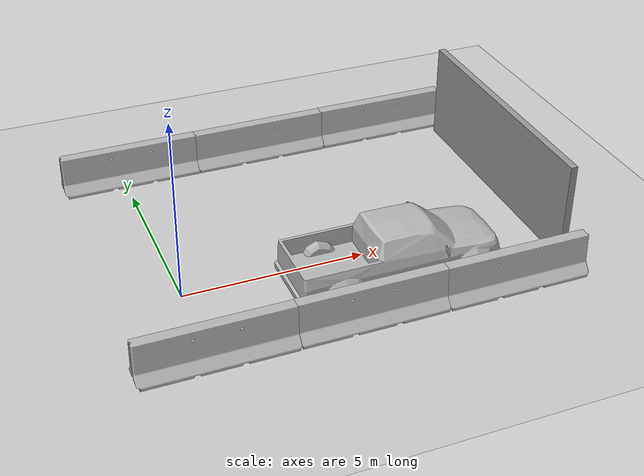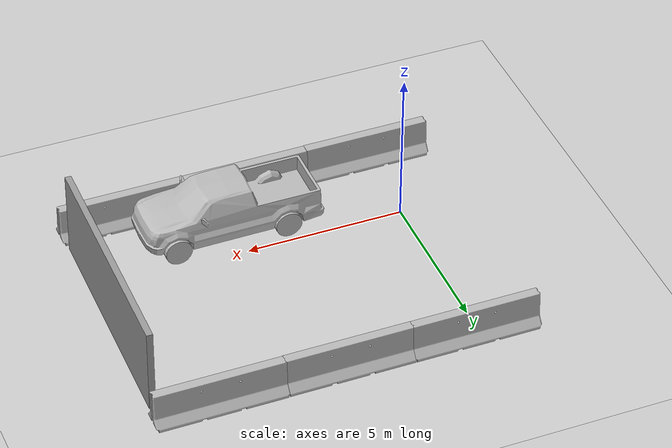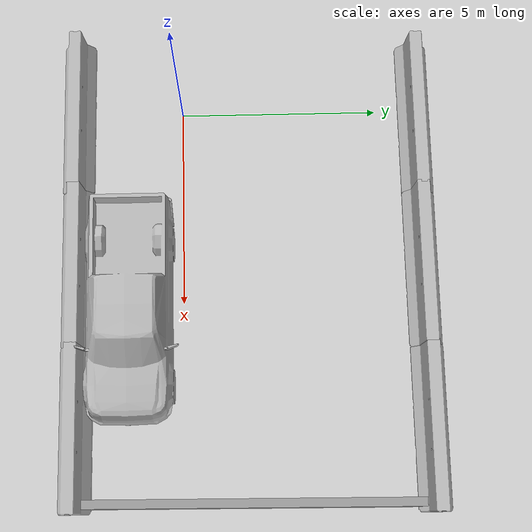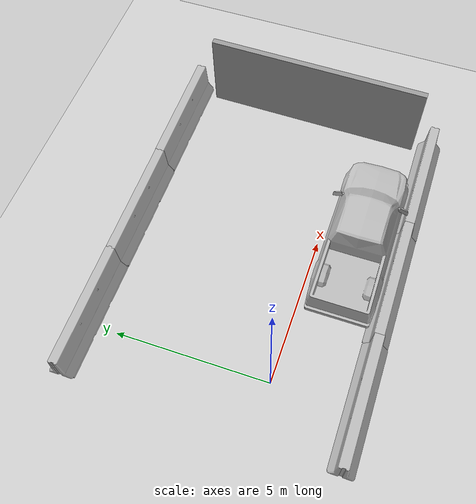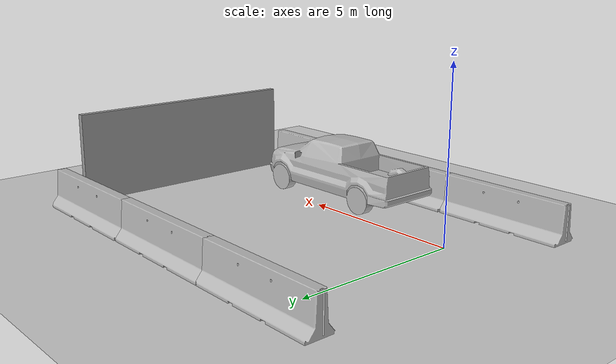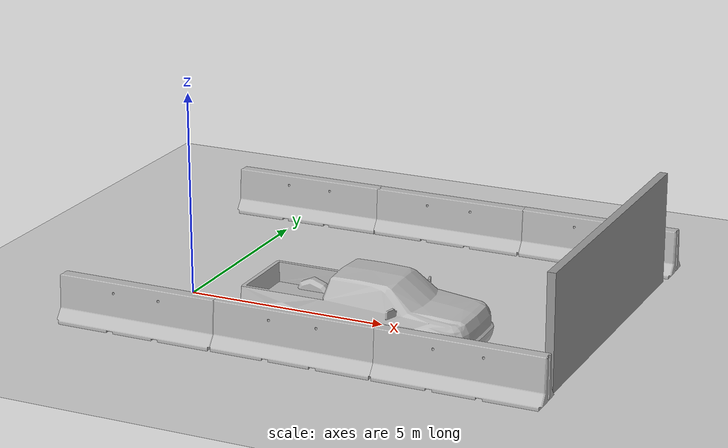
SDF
<sdf version="1.6">
 <world name="default">
  <model name="ground_plane">
   <static>1</static>
   <link name="link">
    <collision name="collision">
     <geometry><plane><normal>0 0 1</normal><size>100 100</size></plane></geometry>
     <surface><friction><ode><mu>100</mu><mu2>50</mu2></ode></friction></surface>
    </collision>
    <visual name="visual">
     <transparency>1</transparency>
     <cast_shadows>0</cast_shadows>
     <geometry><plane><normal>0 0 1</normal><size>100 100</size></plane></geometry>
     <material>
      <script><uri>file://media/materials/scripts/gazebo.material</uri><name>Gazebo/Grey</name></script>
     </material>
    </visual>
   </link>
  </model>
  <model name="jersey_barrier_1">
   <static>1</static>
   <link name="link">
    <visual name="visual">
     <geometry><mesh><uri>model://jersey_barrier/meshes/jersey_barrier.dae</uri></mesh></geometry>
    </visual>
    <collision name="upright">
     <pose>0 0 0.5715 0 -0 0</pose>
     <geometry><box><size>4.06542 0.3063 1.143</size></box></geometry>
    </collision>
    <collision name="base">
     <pose>0 0 0.032258 0 -0 0</pose>
     <geometry><box><size>4.06542 0.8107 0.064516</size></box></geometry>
    </collision>
    <collision name="base2">
     <pose>0 0 0.1 0 -0 0</pose>
     <geometry><box><size>4.06542 0.65 0.1</size></box></geometry>
    </collision>
    <collision name="base3">
     <pose>0 0 0.2 0 -0 0</pose>
     <geometry><box><size>4.06542 0.5 0.1</size></box></geometry>
    </collision>
    <collision name="left-angle">
     <pose>0 -0.224 0.2401 0.9 -0 0</pose>
     <geometry><box><size>4.06542 0.5 0.064516</size></box></geometry>
    </collision>
    <collision name="right-angle">
     <pose>0 0.224 0.2401 -0.9 0 0</pose>
     <geometry><box><size>4.06542 0.5 0.064516</size></box></geometry>
    </collision>
   </link>
   <pose>0.248575 6.01011 0 0 -0 0</pose>
  </model>
  <model name="jersey_barrier_2">
   <static>1</static>
   <link name="link">
    <visual name="visual">
     <geometry><mesh><uri>model://jersey_barrier/meshes/jersey_barrier.dae</uri></mesh></geometry>
    </visual>
    <collision name="upright">
     <pose>0 0 0.5715 0 -0 0</pose>
     <geometry><box><size>4.06542 0.3063 1.143</size></box></geometry>
    </collision>
    <collision name="base">
     <pose>0 0 0.032258 0 -0 0</pose>
     <geometry><box><size>4.06542 0.8107 0.064516</size></box></geometry>
    </collision>
    <collision name="base2">
     <pose>0 0 0.1 0 -0 0</pose>
     <geometry><box><size>4.06542 0.65 0.1</size></box></geometry>
    </collision>
    <collision name="base3">
     <pose>0 0 0.2 0 -0 0</pose>
     <geometry><box><size>4.06542 0.5 0.1</size></box></geometry>
    </collision>
    <collision name="left-angle">
     <pose>0 -0.224 0.2401 0.9 -0 0</pose>
     <geometry><box><size>4.06542 0.5 0.064516</size></box></geometry>
    </collision>
    <collision name="right-angle">
     <pose>0 0.224 0.2401 -0.9 0 0</pose>
     <geometry><box><size>4.06542 0.5 0.064516</size></box></geometry>
    </collision>
   </link>
   <pose>4.20715 6.00684 0 0 -0 0</pose>
  </model>
  <model name="jersey_barrier_3">
   <static>1</static>
   <link name="link">
    <visual name="visual">
     <geometry><mesh><uri>model://jersey_barrier/meshes/jersey_barrier.dae</uri></mesh></geometry>
    </visual>
    <collision name="upright">
     <pose>0 0 0.5715 0 -0 0</pose>
     <geometry><box><size>4.06542 0.3063 1.143</size></box></geometry>
    </collision>
    <collision name="base">
     <pose>0 0 0.032258 0 -0 0</pose>
     <geometry><box><size>4.06542 0.8107 0.064516</size></box></geometry>
    </collision>
    <collision name="base2">
     <pose>0 0 0.1 0 -0 0</pose>
     <geometry><box><size>4.06542 0.65 0.1</size></box></geometry>
    </collision>
    <collision name="base3">
     <pose>0 0 0.2 0 -0 0</pose>
     <geometry><box><size>4.06542 0.5 0.1</size></box></geometry>
    </collision>
    <collision name="left-angle">
     <pose>0 -0.224 0.2401 0.9 -0 0</pose>
     <geometry><box><size>4.06542 0.5 0.064516</size></box></geometry>
    </collision>
    <collision name="right-angle">
     <pose>0 0.224 0.2401 -0.9 0 0</pose>
     <geometry><box><size>4.06542 0.5 0.064516</size></box></geometry>
    </collision>
   </link>
   <pose>8.19136 6.01867 0 0 -0 0</pose>
  </model>
  <model name="jersey_barrier_4">
   <static>1</static>
   <link name="link">
    <visual name="visual">
     <geometry><mesh><uri>model://jersey_barrier/meshes/jersey_barrier.dae</uri></mesh></geometry>
    </visual>
    <collision name="upright">
     <pose>0 0 0.5715 0 -0 0</pose>
     <geometry><box><size>4.06542 0.3063 1.143</size></box></geometry>
    </collision>
    <collision name="base">
     <pose>0 0 0.032258 0 -0 0</pose>
     <geometry><box><size>4.06542 0.8107 0.064516</size></box></geometry>
    </collision>
    <collision name="base2">
     <pose>0 0 0.1 0 -0 0</pose>
     <geometry><box><size>4.06542 0.65 0.1</size></box></geometry>
    </collision>
    <collision name="base3">
     <pose>0 0 0.2 0 -0 0</pose>
     <geometry><box><size>4.06542 0.5 0.1</size></box></geometry>
    </collision>
    <collision name="left-angle">
     <pose>0 -0.224 0.2401 0.9 -0 0</pose>
     <geometry><box><size>4.06542 0.5 0.064516</size></box></geometry>
    </collision>
    <collision name="right-angle">
     <pose>0 0.224 0.2401 -0.9 0 0</pose>
     <geometry><box><size>4.06542 0.5 0.064516</size></box></geometry>
    </collision>
   </link>
   <pose>8.0964 -2.68116 0 0 -0 0</pose>
  </model>
  <model name="jersey_barrier_5">
   <static>1</static>
   <link name="link">
    <visual name="visual">
     <geometry><mesh><uri>model://jersey_barrier/meshes/jersey_barrier.dae</uri></mesh></geometry>
    </visual>
    <collision name="upright">
     <pose>0 0 0.5715 0 -0 0</pose>
     <geometry><box><size>4.06542 0.3063 1.143</size></box></geometry>
    </collision>
    <collision name="base">
     <pose>0 0 0.032258 0 -0 0</pose>
     <geometry><box><size>4.06542 0.8107 0.064516</size></box></geometry>
    </collision>
    <collision name="base2">
     <pose>0 0 0.1 0 -0 0</pose>
     <geometry><box><size>4.06542 0.65 0.1</size></box></geometry>
    </collision>
    <collision name="base3">
     <pose>0 0 0.2 0 -0 0</pose>
     <geometry><box><size>4.06542 0.5 0.1</size></box></geometry>
    </collision>
    <collision name="left-angle">
     <pose>0 -0.224 0.2401 0.9 -0 0</pose>
     <geometry><box><size>4.06542 0.5 0.064516</size></box></geometry>
    </collision>
    <collision name="right-angle">
     <pose>0 0.224 0.2401 -0.9 0 0</pose>
     <geometry><box><size>4.06542 0.5 0.064516</size></box></geometry>
    </collision>
   </link>
   <pose>4.09361 -2.67385 0 0 -0 0</pose>
  </model>
  <model name="jersey_barrier_6">
   <static>1</static>
   <link name="link">
    <visual name="visual">
     <geometry><mesh><uri>model://jersey_barrier/meshes/jersey_barrier.dae</uri></mesh></geometry>
    </visual>
    <collision name="upright">
     <pose>0 0 0.5715 0 -0 0</pose>
     <geometry><box><size>4.06542 0.3063 1.143</size></box></geometry>
    </collision>
    <collision name="base">
     <pose>0 0 0.032258 0 -0 0</pose>
     <geometry><box><size>4.06542 0.8107 0.064516</size></box></geometry>
    </collision>
    <collision name="base2">
     <pose>0 0 0.1 0 -0 0</pose>
     <geometry><box><size>4.06542 0.65 0.1</size></box></geometry>
    </collision>
    <collision name="base3">
     <pose>0 0 0.2 0 -0 0</pose>
     <geometry><box><size>4.06542 0.5 0.1</size></box></geometry>
    </collision>
    <collision name="left-angle">
     <pose>0 -0.224 0.2401 0.9 -0 0</pose>
     <geometry><box><size>4.06542 0.5 0.064516</size></box></geometry>
    </collision>
    <collision name="right-angle">
     <pose>0 0.224 0.2401 -0.9 0 0</pose>
     <geometry><box><size>4.06542 0.5 0.064516</size></box></geometry>
    </collision>
   </link>
   <pose>0.086719 -2.68949 0 0 -0 0</pose>
  </model>
  <model name="pickup">
   <static>1</static>
   <link name="link">
    <collision name="collision">
     <pose>0 0 0 0 0 -1.5708</pose>
     <geometry><mesh><uri>model://pickup/meshes/pickup.dae</uri></mesh></geometry>
    </collision>
    <visual name="visual">
     <pose>0 0 0 0 0 -1.5708</pose>
     <geometry><mesh><uri>model://pickup/meshes/pickup.dae</uri></mesh></geometry>
    </visual>
   </link>
   <pose>5.35397 -1.30436 0 0 -0 0</pose>
  </model>
  <model name="grey_wall">
   <static>1</static>
   <link name="link">
    <pose>0 0 1.4 0 -0 0</pose>
    <collision name="collision"><geometry><box><size>7.5 0.2 2.8</size></box></geometry></collision>
    <visual name="visual">
     <cast_shadows>0</cast_shadows>
     <geometry><box><size>7.5 0.2 2.8</size></box></geometry>
     <material>
      <script>
       <uri>model://grey_wall/materials/scripts</uri>
       <uri>model://grey_wall/materials/textures</uri>
       <name>vrc/grey_wall</name>
      </script>
     </material>
    </visual>
   </link>
   <pose>9.95585 1.645 0 0 0 -1.58125</pose>
  </model>
 </world>
</sdf>
